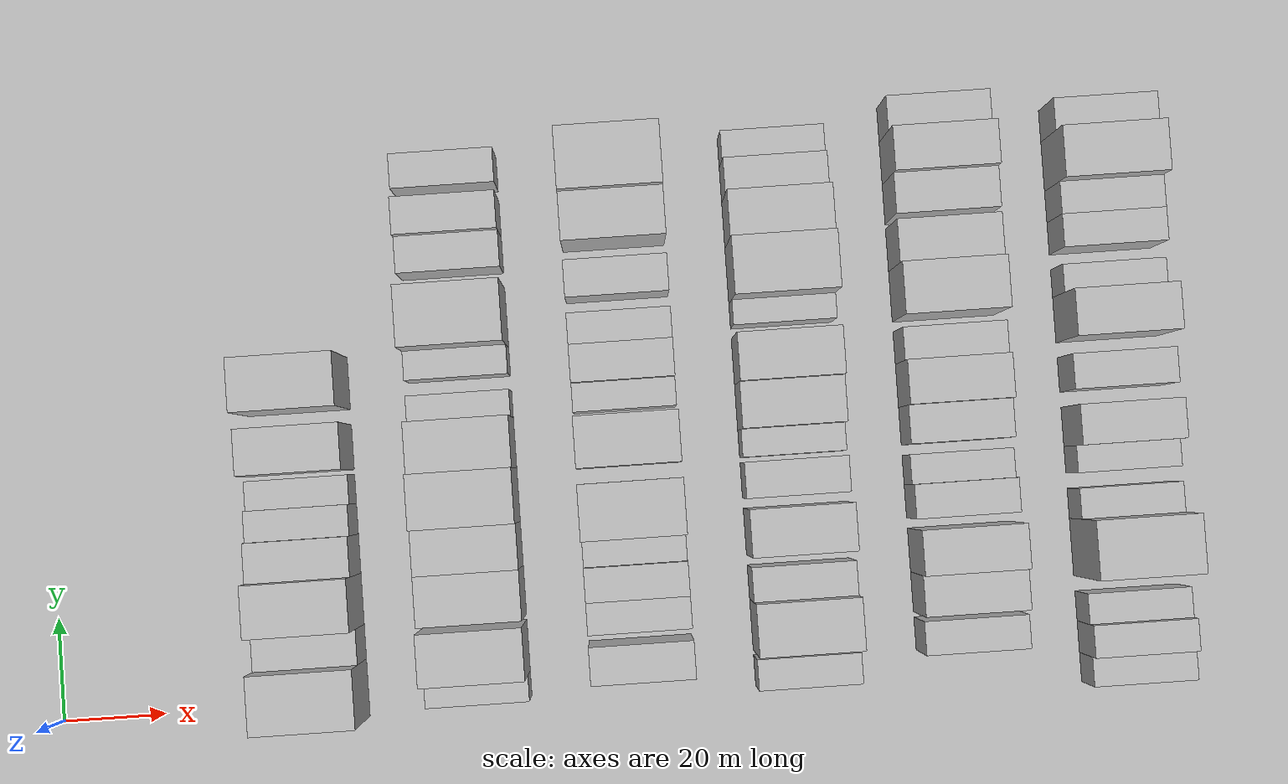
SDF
<sdf version="1.6">
 <world name="default">
  <include><name>ground_plane_1</name><uri>model://HANNAS_ground_plane</uri></include>
  <include>
   <name>ground_plane_2</name>
   <uri>model://HANNAS_ground_plane</uri>
   <pose>100 0 0  0 0 0</pose>
  </include>
  <model name="building_59">
   <static>1</static>
   <pose>50.0000 2.4540 0 0.000000 0.000000 0.000000</pose>
   <link name="link">
    <pose>0 0 12.00 0 0 0</pose>
    <collision name="collision"><geometry><box><size>20.0000 11.2558 24.0000</size></box></geometry></collision>
    <visual name="visual">
     <cast_shadows>0</cast_shadows>
     <geometry><box><size>20.0000 11.2558 24.0000</size></box></geometry>
     <material>
      <script>
       <uri>model://HANNAS_wall/materials/scripts</uri>
       <uri>model://HANNAS_wall/materials/textures</uri>
       <name>vrc/HANNAS_wall</name>
      </script>
     </material>
    </visual>
   </link>
  </model>
  <model name="building_60">
   <static>1</static>
   <pose>50.0000 11.4748 0 0.000000 0.000000 0.000000</pose>
   <link name="link">
    <pose>0 0 7.50 0 0 0</pose>
    <collision name="collision"><geometry><box><size>20.0000 6.7858 15.0000</size></box></geometry></collision>
    <visual name="visual">
     <cast_shadows>0</cast_shadows>
     <geometry><box><size>20.0000 6.7858 15.0000</size></box></geometry>
     <material>
      <script>
       <uri>model://HANNAS_wall/materials/scripts</uri>
       <uri>model://HANNAS_wall/materials/textures</uri>
       <name>vrc/HANNAS_wall</name>
      </script>
     </material>
    </visual>
   </link>
  </model>
  <model name="building_61">
   <static>1</static>
   <pose>50.0000 19.8986 0 0.000000 0.000000 0.000000</pose>
   <link name="link">
    <pose>0 0 12.00 0 0 0</pose>
    <collision name="collision"><geometry><box><size>20.0000 10.0618 24.0000</size></box></geometry></collision>
    <visual name="visual">
     <cast_shadows>0</cast_shadows>
     <geometry><box><size>20.0000 10.0618 24.0000</size></box></geometry>
     <material>
      <script>
       <uri>model://HANNAS_wall/materials/scripts</uri>
       <uri>model://HANNAS_wall/materials/textures</uri>
       <name>vrc/HANNAS_wall</name>
      </script>
     </material>
    </visual>
   </link>
  </model>
  <model name="building_62">
   <static>1</static>
   <pose>50.0000 28.7914 0 0.000000 0.000000 0.000000</pose>
   <link name="link">
    <pose>0 0 9.00 0 0 0</pose>
    <collision name="collision"><geometry><box><size>20.0000 7.7238 18.0000</size></box></geometry></collision>
    <visual name="visual">
     <cast_shadows>0</cast_shadows>
     <geometry><box><size>20.0000 7.7238 18.0000</size></box></geometry>
     <material>
      <script>
       <uri>model://HANNAS_wall/materials/scripts</uri>
       <uri>model://HANNAS_wall/materials/textures</uri>
       <name>vrc/HANNAS_wall</name>
      </script>
     </material>
    </visual>
   </link>
  </model>
  <model name="building_63">
   <static>1</static>
   <pose>50.0000 35.6680 0 0.000000 0.000000 0.000000</pose>
   <link name="link">
    <pose>0 0 7.50 0 0 0</pose>
    <collision name="collision"><geometry><box><size>20.0000 6.0293 15.0000</size></box></geometry></collision>
    <visual name="visual">
     <cast_shadows>0</cast_shadows>
     <geometry><box><size>20.0000 6.0293 15.0000</size></box></geometry>
     <material>
      <script>
       <uri>model://HANNAS_wall/materials/scripts</uri>
       <uri>model://HANNAS_wall/materials/textures</uri>
       <name>vrc/HANNAS_wall</name>
      </script>
     </material>
    </visual>
   </link>
  </model>
  <model name="building_64">
   <static>1</static>
   <pose>50.0000 41.5194 0 0.000000 0.000000 0.000000</pose>
   <link name="link">
    <pose>0 0 6.00 0 0 0</pose>
    <collision name="collision"><geometry><box><size>20.0000 5.6735 12.0000</size></box></geometry></collision>
    <visual name="visual">
     <cast_shadows>0</cast_shadows>
     <geometry><box><size>20.0000 5.6735 12.0000</size></box></geometry>
     <material>
      <script>
       <uri>model://HANNAS_wall/materials/scripts</uri>
       <uri>model://HANNAS_wall/materials/textures</uri>
       <name>vrc/HANNAS_wall</name>
      </script>
     </material>
    </visual>
   </link>
  </model>
  <model name="building_65">
   <static>1</static>
   <pose>50.0000 49.8025 0 0.000000 0.000000 0.000000</pose>
   <link name="link">
    <pose>0 0 10.50 0 0 0</pose>
    <collision name="collision"><geometry><box><size>20.0000 8.8927 21.0000</size></box></geometry></collision>
    <visual name="visual">
     <cast_shadows>0</cast_shadows>
     <geometry><box><size>20.0000 8.8927 21.0000</size></box></geometry>
     <material>
      <script>
       <uri>model://HANNAS_wall/materials/scripts</uri>
       <uri>model://HANNAS_wall/materials/textures</uri>
       <name>vrc/HANNAS_wall</name>
      </script>
     </material>
    </visual>
   </link>
  </model>
  <model name="building_66">
   <static>1</static>
   <pose>50.0000 62.4024 0 0.000000 0.000000 0.000000</pose>
   <link name="link">
    <pose>0 0 12.00 0 0 0</pose>
    <collision name="collision"><geometry><box><size>20.0000 10.3072 24.0000</size></box></geometry></collision>
    <visual name="visual">
     <cast_shadows>0</cast_shadows>
     <geometry><box><size>20.0000 10.3072 24.0000</size></box></geometry>
     <material>
      <script>
       <uri>model://HANNAS_wall/materials/scripts</uri>
       <uri>model://HANNAS_wall/materials/textures</uri>
       <name>vrc/HANNAS_wall</name>
      </script>
     </material>
    </visual>
   </link>
  </model>
  <model name="building_176">
   <static>1</static>
   <pose>82.0000 1.1740 0 0.000000 0.000000 0.000000</pose>
   <link name="link">
    <pose>0 0 6.00 0 0 0</pose>
    <collision name="collision"><geometry><box><size>20.0000 4.9287 12.0000</size></box></geometry></collision>
    <visual name="visual">
     <cast_shadows>0</cast_shadows>
     <geometry><box><size>20.0000 4.9287 12.0000</size></box></geometry>
     <material>
      <script>
       <uri>model://HANNAS_wall/materials/scripts</uri>
       <uri>model://HANNAS_wall/materials/textures</uri>
       <name>vrc/HANNAS_wall</name>
      </script>
     </material>
    </visual>
   </link>
  </model>
  <model name="building_177">
   <static>1</static>
   <pose>82.0000 8.6449 0 0.000000 0.000000 0.000000</pose>
   <link name="link">
    <pose>0 0 12.00 0 0 0</pose>
    <collision name="collision"><geometry><box><size>20.0000 10.0131 24.0000</size></box></geometry></collision>
    <visual name="visual">
     <cast_shadows>0</cast_shadows>
     <geometry><box><size>20.0000 10.0131 24.0000</size></box></geometry>
     <material>
      <script>
       <uri>model://HANNAS_wall/materials/scripts</uri>
       <uri>model://HANNAS_wall/materials/textures</uri>
       <name>vrc/HANNAS_wall</name>
      </script>
     </material>
    </visual>
   </link>
  </model>
  <model name="building_178">
   <static>1</static>
   <pose>82.0000 19.4543 0 0.000000 0.000000 0.000000</pose>
   <link name="link">
    <pose>0 0 10.50 0 0 0</pose>
    <collision name="collision"><geometry><box><size>20.0000 9.6057 21.0000</size></box></geometry></collision>
    <visual name="visual">
     <cast_shadows>0</cast_shadows>
     <geometry><box><size>20.0000 9.6057 21.0000</size></box></geometry>
     <material>
      <script>
       <uri>model://HANNAS_wall/materials/scripts</uri>
       <uri>model://HANNAS_wall/materials/textures</uri>
       <name>vrc/HANNAS_wall</name>
      </script>
     </material>
    </visual>
   </link>
  </model>
  <model name="building_179">
   <static>1</static>
   <pose>82.0000 28.6074 0 0.000000 0.000000 0.000000</pose>
   <link name="link">
    <pose>0 0 10.50 0 0 0</pose>
    <collision name="collision"><geometry><box><size>20.0000 8.7005 21.0000</size></box></geometry></collision>
    <visual name="visual">
     <cast_shadows>0</cast_shadows>
     <geometry><box><size>20.0000 8.7005 21.0000</size></box></geometry>
     <material>
      <script>
       <uri>model://HANNAS_wall/materials/scripts</uri>
       <uri>model://HANNAS_wall/materials/textures</uri>
       <name>vrc/HANNAS_wall</name>
      </script>
     </material>
    </visual>
   </link>
  </model>
  <model name="building_180">
   <static>1</static>
   <pose>82.0000 38.2340 0 0.000000 0.000000 0.000000</pose>
   <link name="link">
    <pose>0 0 12.00 0 0 0</pose>
    <collision name="collision"><geometry><box><size>20.0000 10.5526 24.0000</size></box></geometry></collision>
    <visual name="visual">
     <cast_shadows>0</cast_shadows>
     <geometry><box><size>20.0000 10.5526 24.0000</size></box></geometry>
     <material>
      <script>
       <uri>model://HANNAS_wall/materials/scripts</uri>
       <uri>model://HANNAS_wall/materials/textures</uri>
       <name>vrc/HANNAS_wall</name>
      </script>
     </material>
    </visual>
   </link>
  </model>
  <model name="building_181">
   <static>1</static>
   <pose>82.0000 48.4615 0 0.000000 0.000000 0.000000</pose>
   <link name="link">
    <pose>0 0 10.50 0 0 0</pose>
    <collision name="collision"><geometry><box><size>20.0000 9.9025 21.0000</size></box></geometry></collision>
    <visual name="visual">
     <cast_shadows>0</cast_shadows>
     <geometry><box><size>20.0000 9.9025 21.0000</size></box></geometry>
     <material>
      <script>
       <uri>model://HANNAS_wall/materials/scripts</uri>
       <uri>model://HANNAS_wall/materials/textures</uri>
       <name>vrc/HANNAS_wall</name>
      </script>
     </material>
    </visual>
   </link>
  </model>
  <model name="building_182">
   <static>1</static>
   <pose>82.0000 56.0229 0 0.000000 0.000000 0.000000</pose>
   <link name="link">
    <pose>0 0 6.00 0 0 0</pose>
    <collision name="collision"><geometry><box><size>20.0000 5.2202 12.0000</size></box></geometry></collision>
    <visual name="visual">
     <cast_shadows>0</cast_shadows>
     <geometry><box><size>20.0000 5.2202 12.0000</size></box></geometry>
     <material>
      <script>
       <uri>model://HANNAS_wall/materials/scripts</uri>
       <uri>model://HANNAS_wall/materials/textures</uri>
       <name>vrc/HANNAS_wall</name>
      </script>
     </material>
    </visual>
   </link>
  </model>
  <model name="building_183">
   <static>1</static>
   <pose>82.0000 64.4523 0 0.000000 0.000000 0.000000</pose>
   <link name="link">
    <pose>0 0 6.00 0 0 0</pose>
    <collision name="collision"><geometry><box><size>20.0000 5.6386 12.0000</size></box></geometry></collision>
    <visual name="visual">
     <cast_shadows>0</cast_shadows>
     <geometry><box><size>20.0000 5.6386 12.0000</size></box></geometry>
     <material>
      <script>
       <uri>model://HANNAS_wall/materials/scripts</uri>
       <uri>model://HANNAS_wall/materials/textures</uri>
       <name>vrc/HANNAS_wall</name>
      </script>
     </material>
    </visual>
   </link>
  </model>
  <model name="building_184">
   <static>1</static>
   <pose>82.0000 73.1516 0 0.000000 0.000000 0.000000</pose>
   <link name="link">
    <pose>0 0 12.00 0 0 0</pose>
    <collision name="collision"><geometry><box><size>20.0000 11.7602 24.0000</size></box></geometry></collision>
    <visual name="visual">
     <cast_shadows>0</cast_shadows>
     <geometry><box><size>20.0000 11.7602 24.0000</size></box></geometry>
     <material>
      <script>
       <uri>model://HANNAS_wall/materials/scripts</uri>
       <uri>model://HANNAS_wall/materials/textures</uri>
       <name>vrc/HANNAS_wall</name>
      </script>
     </material>
    </visual>
   </link>
  </model>
  <model name="building_185">
   <static>1</static>
   <pose>82.0000 85.5700 0 0.000000 0.000000 0.000000</pose>
   <link name="link">
    <pose>0 0 7.50 0 0 0</pose>
    <collision name="collision"><geometry><box><size>20.0000 7.0766 15.0000</size></box></geometry></collision>
    <visual name="visual">
     <cast_shadows>0</cast_shadows>
     <geometry><box><size>20.0000 7.0766 15.0000</size></box></geometry>
     <material>
      <script>
       <uri>model://HANNAS_wall/materials/scripts</uri>
       <uri>model://HANNAS_wall/materials/textures</uri>
       <name>vrc/HANNAS_wall</name>
      </script>
     </material>
    </visual>
   </link>
  </model>
  <model name="building_186">
   <static>1</static>
   <pose>82.0000 92.7219 0 0.000000 0.000000 0.000000</pose>
   <link name="link">
    <pose>0 0 9.00 0 0 0</pose>
    <collision name="collision"><geometry><box><size>20.0000 7.2272 18.0000</size></box></geometry></collision>
    <visual name="visual">
     <cast_shadows>0</cast_shadows>
     <geometry><box><size>20.0000 7.2272 18.0000</size></box></geometry>
     <material>
      <script>
       <uri>model://HANNAS_wall/materials/scripts</uri>
       <uri>model://HANNAS_wall/materials/textures</uri>
       <name>vrc/HANNAS_wall</name>
      </script>
     </material>
    </visual>
   </link>
  </model>
  <model name="building_187">
   <static>1</static>
   <pose>82.0000 101.6809 0 0.000000 0.000000 0.000000</pose>
   <link name="link">
    <pose>0 0 7.50 0 0 0</pose>
    <collision name="collision"><geometry><box><size>20.0000 6.6908 15.0000</size></box></geometry></collision>
    <visual name="visual">
     <cast_shadows>0</cast_shadows>
     <geometry><box><size>20.0000 6.6908 15.0000</size></box></geometry>
     <material>
      <script>
       <uri>model://HANNAS_wall/materials/scripts</uri>
       <uri>model://HANNAS_wall/materials/textures</uri>
       <name>vrc/HANNAS_wall</name>
      </script>
     </material>
    </visual>
   </link>
  </model>
  <model name="building_298">
   <static>1</static>
   <pose>114.0000 4.9829 0 0.000000 0.000000 0.000000</pose>
   <link name="link">
    <pose>0 0 9.00 0 0 0</pose>
    <collision name="collision"><geometry><box><size>20.0000 7.3119 18.0000</size></box></geometry></collision>
    <visual name="visual">
     <cast_shadows>0</cast_shadows>
     <geometry><box><size>20.0000 7.3119 18.0000</size></box></geometry>
     <material>
      <script>
       <uri>model://HANNAS_wall/materials/scripts</uri>
       <uri>model://HANNAS_wall/materials/textures</uri>
       <name>vrc/HANNAS_wall</name>
      </script>
     </material>
    </visual>
   </link>
  </model>
  <model name="building_299">
   <static>1</static>
   <pose>114.0000 13.7177 0 0.000000 0.000000 0.000000</pose>
   <link name="link">
    <pose>0 0 7.50 0 0 0</pose>
    <collision name="collision"><geometry><box><size>20.0000 6.1577 15.0000</size></box></geometry></collision>
    <visual name="visual">
     <cast_shadows>0</cast_shadows>
     <geometry><box><size>20.0000 6.1577 15.0000</size></box></geometry>
     <material>
      <script>
       <uri>model://HANNAS_wall/materials/scripts</uri>
       <uri>model://HANNAS_wall/materials/textures</uri>
       <name>vrc/HANNAS_wall</name>
      </script>
     </material>
    </visual>
   </link>
  </model>
  <model name="building_300">
   <static>1</static>
   <pose>114.0000 20.1188 0 0.000000 0.000000 0.000000</pose>
   <link name="link">
    <pose>0 0 7.50 0 0 0</pose>
    <collision name="collision"><geometry><box><size>20.0000 6.6445 15.0000</size></box></geometry></collision>
    <visual name="visual">
     <cast_shadows>0</cast_shadows>
     <geometry><box><size>20.0000 6.6445 15.0000</size></box></geometry>
     <material>
      <script>
       <uri>model://HANNAS_wall/materials/scripts</uri>
       <uri>model://HANNAS_wall/materials/textures</uri>
       <name>vrc/HANNAS_wall</name>
      </script>
     </material>
    </visual>
   </link>
  </model>
  <model name="building_301">
   <static>1</static>
   <pose>114.0000 26.0762 0 0.000000 0.000000 0.000000</pose>
   <link name="link">
    <pose>0 0 6.00 0 0 0</pose>
    <collision name="collision"><geometry><box><size>20.0000 5.2703 12.0000</size></box></geometry></collision>
    <visual name="visual">
     <cast_shadows>0</cast_shadows>
     <geometry><box><size>20.0000 5.2703 12.0000</size></box></geometry>
     <material>
      <script>
       <uri>model://HANNAS_wall/materials/scripts</uri>
       <uri>model://HANNAS_wall/materials/textures</uri>
       <name>vrc/HANNAS_wall</name>
      </script>
     </material>
    </visual>
   </link>
  </model>
  <model name="building_302">
   <static>1</static>
   <pose>114.0000 34.0708 0 0.000000 0.000000 0.000000</pose>
   <link name="link">
    <pose>0 0 12.00 0 0 0</pose>
    <collision name="collision"><geometry><box><size>20.0000 10.7191 24.0000</size></box></geometry></collision>
    <visual name="visual">
     <cast_shadows>0</cast_shadows>
     <geometry><box><size>20.0000 10.7191 24.0000</size></box></geometry>
     <material>
      <script>
       <uri>model://HANNAS_wall/materials/scripts</uri>
       <uri>model://HANNAS_wall/materials/textures</uri>
       <name>vrc/HANNAS_wall</name>
      </script>
     </material>
    </visual>
   </link>
  </model>
  <model name="building_303">
   <static>1</static>
   <pose>114.0000 47.3775 0 0.000000 0.000000 0.000000</pose>
   <link name="link">
    <pose>0 0 10.50 0 0 0</pose>
    <collision name="collision"><geometry><box><size>20.0000 9.8943 21.0000</size></box></geometry></collision>
    <visual name="visual">
     <cast_shadows>0</cast_shadows>
     <geometry><box><size>20.0000 9.8943 21.0000</size></box></geometry>
     <material>
      <script>
       <uri>model://HANNAS_wall/materials/scripts</uri>
       <uri>model://HANNAS_wall/materials/textures</uri>
       <name>vrc/HANNAS_wall</name>
      </script>
     </material>
    </visual>
   </link>
  </model>
  <model name="building_304">
   <static>1</static>
   <pose>114.0000 56.1058 0 0.000000 0.000000 0.000000</pose>
   <link name="link">
    <pose>0 0 6.00 0 0 0</pose>
    <collision name="collision"><geometry><box><size>20.0000 5.5623 12.0000</size></box></geometry></collision>
    <visual name="visual">
     <cast_shadows>0</cast_shadows>
     <geometry><box><size>20.0000 5.5623 12.0000</size></box></geometry>
     <material>
      <script>
       <uri>model://HANNAS_wall/materials/scripts</uri>
       <uri>model://HANNAS_wall/materials/textures</uri>
       <name>vrc/HANNAS_wall</name>
      </script>
     </material>
    </visual>
   </link>
  </model>
  <model name="building_305">
   <static>1</static>
   <pose>114.0000 62.5528 0 0.000000 0.000000 0.000000</pose>
   <link name="link">
    <pose>0 0 7.50 0 0 0</pose>
    <collision name="collision"><geometry><box><size>20.0000 7.3317 15.0000</size></box></geometry></collision>
    <visual name="visual">
     <cast_shadows>0</cast_shadows>
     <geometry><box><size>20.0000 7.3317 15.0000</size></box></geometry>
     <material>
      <script>
       <uri>model://HANNAS_wall/materials/scripts</uri>
       <uri>model://HANNAS_wall/materials/textures</uri>
       <name>vrc/HANNAS_wall</name>
      </script>
     </material>
    </visual>
   </link>
  </model>
  <model name="building_306">
   <static>1</static>
   <pose>114.0000 69.2244 0 0.000000 0.000000 0.000000</pose>
   <link name="link">
    <pose>0 0 7.50 0 0 0</pose>
    <collision name="collision"><geometry><box><size>20.0000 6.0115 15.0000</size></box></geometry></collision>
    <visual name="visual">
     <cast_shadows>0</cast_shadows>
     <geometry><box><size>20.0000 6.0115 15.0000</size></box></geometry>
     <material>
      <script>
       <uri>model://HANNAS_wall/materials/scripts</uri>
       <uri>model://HANNAS_wall/materials/textures</uri>
       <name>vrc/HANNAS_wall</name>
      </script>
     </material>
    </visual>
   </link>
  </model>
  <model name="building_307">
   <static>1</static>
   <pose>114.0000 78.8335 0 0.000000 0.000000 0.000000</pose>
   <link name="link">
    <pose>0 0 7.50 0 0 0</pose>
    <collision name="collision"><geometry><box><size>20.0000 7.2066 15.0000</size></box></geometry></collision>
    <visual name="visual">
     <cast_shadows>0</cast_shadows>
     <geometry><box><size>20.0000 7.2066 15.0000</size></box></geometry>
     <material>
      <script>
       <uri>model://HANNAS_wall/materials/scripts</uri>
       <uri>model://HANNAS_wall/materials/textures</uri>
       <name>vrc/HANNAS_wall</name>
      </script>
     </material>
    </visual>
   </link>
  </model>
  <model name="building_308">
   <static>1</static>
   <pose>114.0000 90.1056 0 0.000000 0.000000 0.000000</pose>
   <link name="link">
    <pose>0 0 10.50 0 0 0</pose>
    <collision name="collision"><geometry><box><size>20.0000 9.3375 21.0000</size></box></geometry></collision>
    <visual name="visual">
     <cast_shadows>0</cast_shadows>
     <geometry><box><size>20.0000 9.3375 21.0000</size></box></geometry>
     <material>
      <script>
       <uri>model://HANNAS_wall/materials/scripts</uri>
       <uri>model://HANNAS_wall/materials/textures</uri>
       <name>vrc/HANNAS_wall</name>
      </script>
     </material>
    </visual>
   </link>
  </model>
  <model name="building_309">
   <static>1</static>
   <pose>114.0000 100.7674 0 0.000000 0.000000 0.000000</pose>
   <link name="link">
    <pose>0 0 12.00 0 0 0</pose>
    <collision name="collision"><geometry><box><size>20.0000 11.9862 24.0000</size></box></geometry></collision>
    <visual name="visual">
     <cast_shadows>0</cast_shadows>
     <geometry><box><size>20.0000 11.9862 24.0000</size></box></geometry>
     <material>
      <script>
       <uri>model://HANNAS_wall/materials/scripts</uri>
       <uri>model://HANNAS_wall/materials/textures</uri>
       <name>vrc/HANNAS_wall</name>
      </script>
     </material>
    </visual>
   </link>
  </model>
  <model name="building_420">
   <static>1</static>
   <pose>146.0000 0.6500 0 0.000000 0.000000 0.000000</pose>
   <link name="link">
    <pose>0 0 6.00 0 0 0</pose>
    <collision name="collision"><geometry><box><size>20.0000 5.9828 12.0000</size></box></geometry></collision>
    <visual name="visual">
     <cast_shadows>0</cast_shadows>
     <geometry><box><size>20.0000 5.9828 12.0000</size></box></geometry>
     <material>
      <script>
       <uri>model://HANNAS_wall/materials/scripts</uri>
       <uri>model://HANNAS_wall/materials/textures</uri>
       <name>vrc/HANNAS_wall</name>
      </script>
     </material>
    </visual>
   </link>
  </model>
  <model name="building_421">
   <static>1</static>
   <pose>146.0000 9.6861 0 0.000000 0.000000 0.000000</pose>
   <link name="link">
    <pose>0 0 10.50 0 0 0</pose>
    <collision name="collision"><geometry><box><size>20.0000 10.0894 21.0000</size></box></geometry></collision>
    <visual name="visual">
     <cast_shadows>0</cast_shadows>
     <geometry><box><size>20.0000 10.0894 21.0000</size></box></geometry>
     <material>
      <script>
       <uri>model://HANNAS_wall/materials/scripts</uri>
       <uri>model://HANNAS_wall/materials/textures</uri>
       <name>vrc/HANNAS_wall</name>
      </script>
     </material>
    </visual>
   </link>
  </model>
  <model name="building_422">
   <static>1</static>
   <pose>146.0000 18.0641 0 0.000000 0.000000 0.000000</pose>
   <link name="link">
    <pose>0 0 7.50 0 0 0</pose>
    <collision name="collision"><geometry><box><size>20.0000 6.6665 15.0000</size></box></geometry></collision>
    <visual name="visual">
     <cast_shadows>0</cast_shadows>
     <geometry><box><size>20.0000 6.6665 15.0000</size></box></geometry>
     <material>
      <script>
       <uri>model://HANNAS_wall/materials/scripts</uri>
       <uri>model://HANNAS_wall/materials/textures</uri>
       <name>vrc/HANNAS_wall</name>
      </script>
     </material>
    </visual>
   </link>
  </model>
  <model name="building_423">
   <static>1</static>
   <pose>146.0000 27.9633 0 0.000000 0.000000 0.000000</pose>
   <link name="link">
    <pose>0 0 10.50 0 0 0</pose>
    <collision name="collision"><geometry><box><size>20.0000 9.1318 21.0000</size></box></geometry></collision>
    <visual name="visual">
     <cast_shadows>0</cast_shadows>
     <geometry><box><size>20.0000 9.1318 21.0000</size></box></geometry>
     <material>
      <script>
       <uri>model://HANNAS_wall/materials/scripts</uri>
       <uri>model://HANNAS_wall/materials/textures</uri>
       <name>vrc/HANNAS_wall</name>
      </script>
     </material>
    </visual>
   </link>
  </model>
  <model name="building_424">
   <static>1</static>
   <pose>146.0000 37.9951 0 0.000000 0.000000 0.000000</pose>
   <link name="link">
    <pose>0 0 7.50 0 0 0</pose>
    <collision name="collision"><geometry><box><size>20.0000 6.9320 15.0000</size></box></geometry></collision>
    <visual name="visual">
     <cast_shadows>0</cast_shadows>
     <geometry><box><size>20.0000 6.9320 15.0000</size></box></geometry>
     <material>
      <script>
       <uri>model://HANNAS_wall/materials/scripts</uri>
       <uri>model://HANNAS_wall/materials/textures</uri>
       <name>vrc/HANNAS_wall</name>
      </script>
     </material>
    </visual>
   </link>
  </model>
  <model name="building_425">
   <static>1</static>
   <pose>146.0000 45.1613 0 0.000000 0.000000 0.000000</pose>
   <link name="link">
    <pose>0 0 6.00 0 0 0</pose>
    <collision name="collision"><geometry><box><size>20.0000 5.4005 12.0000</size></box></geometry></collision>
    <visual name="visual">
     <cast_shadows>0</cast_shadows>
     <geometry><box><size>20.0000 5.4005 12.0000</size></box></geometry>
     <material>
      <script>
       <uri>model://HANNAS_wall/materials/scripts</uri>
       <uri>model://HANNAS_wall/materials/textures</uri>
       <name>vrc/HANNAS_wall</name>
      </script>
     </material>
    </visual>
   </link>
  </model>
  <model name="building_426">
   <static>1</static>
   <pose>146.0000 52.3159 0 0.000000 0.000000 0.000000</pose>
   <link name="link">
    <pose>0 0 9.00 0 0 0</pose>
    <collision name="collision"><geometry><box><size>20.0000 8.9085 18.0000</size></box></geometry></collision>
    <visual name="visual">
     <cast_shadows>0</cast_shadows>
     <geometry><box><size>20.0000 8.9085 18.0000</size></box></geometry>
     <material>
      <script>
       <uri>model://HANNAS_wall/materials/scripts</uri>
       <uri>model://HANNAS_wall/materials/textures</uri>
       <name>vrc/HANNAS_wall</name>
      </script>
     </material>
    </visual>
   </link>
  </model>
  <model name="building_427">
   <static>1</static>
   <pose>146.0000 61.3727 0 0.000000 0.000000 0.000000</pose>
   <link name="link">
    <pose>0 0 10.50 0 0 0</pose>
    <collision name="collision"><geometry><box><size>20.0000 9.2052 21.0000</size></box></geometry></collision>
    <visual name="visual">
     <cast_shadows>0</cast_shadows>
     <geometry><box><size>20.0000 9.2052 21.0000</size></box></geometry>
     <material>
      <script>
       <uri>model://HANNAS_wall/materials/scripts</uri>
       <uri>model://HANNAS_wall/materials/textures</uri>
       <name>vrc/HANNAS_wall</name>
      </script>
     </material>
    </visual>
   </link>
  </model>
  <model name="building_428">
   <static>1</static>
   <pose>146.0000 70.4055 0 0.000000 0.000000 0.000000</pose>
   <link name="link">
    <pose>0 0 6.00 0 0 0</pose>
    <collision name="collision"><geometry><box><size>20.0000 4.8604 12.0000</size></box></geometry></collision>
    <visual name="visual">
     <cast_shadows>0</cast_shadows>
     <geometry><box><size>20.0000 4.8604 12.0000</size></box></geometry>
     <material>
      <script>
       <uri>model://HANNAS_wall/materials/scripts</uri>
       <uri>model://HANNAS_wall/materials/textures</uri>
       <name>vrc/HANNAS_wall</name>
      </script>
     </material>
    </visual>
   </link>
  </model>
  <model name="building_429">
   <static>1</static>
   <pose>146.0000 78.3589 0 0.000000 0.000000 0.000000</pose>
   <link name="link">
    <pose>0 0 12.00 0 0 0</pose>
    <collision name="collision"><geometry><box><size>20.0000 11.0465 24.0000</size></box></geometry></collision>
    <visual name="visual">
     <cast_shadows>0</cast_shadows>
     <geometry><box><size>20.0000 11.0465 24.0000</size></box></geometry>
     <material>
      <script>
       <uri>model://HANNAS_wall/materials/scripts</uri>
       <uri>model://HANNAS_wall/materials/textures</uri>
       <name>vrc/HANNAS_wall</name>
      </script>
     </material>
    </visual>
   </link>
  </model>
  <model name="building_430">
   <static>1</static>
   <pose>146.0000 88.4195 0 0.000000 0.000000 0.000000</pose>
   <link name="link">
    <pose>0 0 10.50 0 0 0</pose>
    <collision name="collision"><geometry><box><size>20.0000 9.0747 21.0000</size></box></geometry></collision>
    <visual name="visual">
     <cast_shadows>0</cast_shadows>
     <geometry><box><size>20.0000 9.0747 21.0000</size></box></geometry>
     <material>
      <script>
       <uri>model://HANNAS_wall/materials/scripts</uri>
       <uri>model://HANNAS_wall/materials/textures</uri>
       <name>vrc/HANNAS_wall</name>
      </script>
     </material>
    </visual>
   </link>
  </model>
  <model name="building_431">
   <static>1</static>
   <pose>146.0000 96.4412 0 0.000000 0.000000 0.000000</pose>
   <link name="link">
    <pose>0 0 7.50 0 0 0</pose>
    <collision name="collision"><geometry><box><size>20.0000 6.9687 15.0000</size></box></geometry></collision>
    <visual name="visual">
     <cast_shadows>0</cast_shadows>
     <geometry><box><size>20.0000 6.9687 15.0000</size></box></geometry>
     <material>
      <script>
       <uri>model://HANNAS_wall/materials/scripts</uri>
       <uri>model://HANNAS_wall/materials/textures</uri>
       <name>vrc/HANNAS_wall</name>
      </script>
     </material>
    </visual>
   </link>
  </model>
  <model name="building_432">
   <static>1</static>
   <pose>146.0000 102.7626 0 0.000000 0.000000 0.000000</pose>
   <link name="link">
    <pose>0 0 6.00 0 0 0</pose>
    <collision name="collision"><geometry><box><size>20.0000 5.6740 12.0000</size></box></geometry></collision>
    <visual name="visual">
     <cast_shadows>0</cast_shadows>
     <geometry><box><size>20.0000 5.6740 12.0000</size></box></geometry>
     <material>
      <script>
       <uri>model://HANNAS_wall/materials/scripts</uri>
       <uri>model://HANNAS_wall/materials/textures</uri>
       <name>vrc/HANNAS_wall</name>
      </script>
     </material>
    </visual>
   </link>
  </model>
  <model name="building_545">
   <static>1</static>
   <pose>178.0000 5.6952 0 0.000000 0.000000 0.000000</pose>
   <link name="link">
    <pose>0 0 7.50 0 0 0</pose>
    <collision name="collision"><geometry><box><size>20.0000 6.4897 15.0000</size></box></geometry></collision>
    <visual name="visual">
     <cast_shadows>0</cast_shadows>
     <geometry><box><size>20.0000 6.4897 15.0000</size></box></geometry>
     <material>
      <script>
       <uri>model://HANNAS_wall/materials/scripts</uri>
       <uri>model://HANNAS_wall/materials/textures</uri>
       <name>vrc/HANNAS_wall</name>
      </script>
     </material>
    </visual>
   </link>
  </model>
  <model name="building_546">
   <static>1</static>
   <pose>178.0000 13.8675 0 0.000000 0.000000 0.000000</pose>
   <link name="link">
    <pose>0 0 9.00 0 0 0</pose>
    <collision name="collision"><geometry><box><size>20.0000 7.8550 18.0000</size></box></geometry></collision>
    <visual name="visual">
     <cast_shadows>0</cast_shadows>
     <geometry><box><size>20.0000 7.8550 18.0000</size></box></geometry>
     <material>
      <script>
       <uri>model://HANNAS_wall/materials/scripts</uri>
       <uri>model://HANNAS_wall/materials/textures</uri>
       <name>vrc/HANNAS_wall</name>
      </script>
     </material>
    </visual>
   </link>
  </model>
  <model name="building_547">
   <static>1</static>
   <pose>178.0000 22.1118 0 0.000000 0.000000 0.000000</pose>
   <link name="link">
    <pose>0 0 10.50 0 0 0</pose>
    <collision name="collision"><geometry><box><size>20.0000 8.6336 21.0000</size></box></geometry></collision>
    <visual name="visual">
     <cast_shadows>0</cast_shadows>
     <geometry><box><size>20.0000 8.6336 21.0000</size></box></geometry>
     <material>
      <script>
       <uri>model://HANNAS_wall/materials/scripts</uri>
       <uri>model://HANNAS_wall/materials/textures</uri>
       <name>vrc/HANNAS_wall</name>
      </script>
     </material>
    </visual>
   </link>
  </model>
  <model name="building_548">
   <static>1</static>
   <pose>178.0000 31.7306 0 0.000000 0.000000 0.000000</pose>
   <link name="link">
    <pose>0 0 7.50 0 0 0</pose>
    <collision name="collision"><geometry><box><size>20.0000 6.6038 15.0000</size></box></geometry></collision>
    <visual name="visual">
     <cast_shadows>0</cast_shadows>
     <geometry><box><size>20.0000 6.6038 15.0000</size></box></geometry>
     <material>
      <script>
       <uri>model://HANNAS_wall/materials/scripts</uri>
       <uri>model://HANNAS_wall/materials/textures</uri>
       <name>vrc/HANNAS_wall</name>
      </script>
     </material>
    </visual>
   </link>
  </model>
  <model name="building_549">
   <static>1</static>
   <pose>178.0000 37.9041 0 0.000000 0.000000 0.000000</pose>
   <link name="link">
    <pose>0 0 6.00 0 0 0</pose>
    <collision name="collision"><geometry><box><size>20.0000 5.7432 12.0000</size></box></geometry></collision>
    <visual name="visual">
     <cast_shadows>0</cast_shadows>
     <geometry><box><size>20.0000 5.7432 12.0000</size></box></geometry>
     <material>
      <script>
       <uri>model://HANNAS_wall/materials/scripts</uri>
       <uri>model://HANNAS_wall/materials/textures</uri>
       <name>vrc/HANNAS_wall</name>
      </script>
     </material>
    </visual>
   </link>
  </model>
  <model name="building_550">
   <static>1</static>
   <pose>178.0000 46.5047 0 0.000000 0.000000 0.000000</pose>
   <link name="link">
    <pose>0 0 7.50 0 0 0</pose>
    <collision name="collision"><geometry><box><size>20.0000 7.4580 15.0000</size></box></geometry></collision>
    <visual name="visual">
     <cast_shadows>0</cast_shadows>
     <geometry><box><size>20.0000 7.4580 15.0000</size></box></geometry>
     <material>
      <script>
       <uri>model://HANNAS_wall/materials/scripts</uri>
       <uri>model://HANNAS_wall/materials/textures</uri>
       <name>vrc/HANNAS_wall</name>
      </script>
     </material>
    </visual>
   </link>
  </model>
  <model name="building_551">
   <static>1</static>
   <pose>178.0000 54.4984 0 0.000000 0.000000 0.000000</pose>
   <link name="link">
    <pose>0 0 9.00 0 0 0</pose>
    <collision name="collision"><geometry><box><size>20.0000 8.5295 18.0000</size></box></geometry></collision>
    <visual name="visual">
     <cast_shadows>0</cast_shadows>
     <geometry><box><size>20.0000 8.5295 18.0000</size></box></geometry>
     <material>
      <script>
       <uri>model://HANNAS_wall/materials/scripts</uri>
       <uri>model://HANNAS_wall/materials/textures</uri>
       <name>vrc/HANNAS_wall</name>
      </script>
     </material>
    </visual>
   </link>
  </model>
  <model name="building_552">
   <static>1</static>
   <pose>178.0000 61.9580 0 0.000000 0.000000 0.000000</pose>
   <link name="link">
    <pose>0 0 7.50 0 0 0</pose>
    <collision name="collision"><geometry><box><size>20.0000 6.3895 15.0000</size></box></geometry></collision>
    <visual name="visual">
     <cast_shadows>0</cast_shadows>
     <geometry><box><size>20.0000 6.3895 15.0000</size></box></geometry>
     <material>
      <script>
       <uri>model://HANNAS_wall/materials/scripts</uri>
       <uri>model://HANNAS_wall/materials/textures</uri>
       <name>vrc/HANNAS_wall</name>
      </script>
     </material>
    </visual>
   </link>
  </model>
  <model name="building_553">
   <static>1</static>
   <pose>178.0000 72.1577 0 0.000000 0.000000 0.000000</pose>
   <link name="link">
    <pose>0 0 10.50 0 0 0</pose>
    <collision name="collision"><geometry><box><size>20.0000 10.0101 21.0000</size></box></geometry></collision>
    <visual name="visual">
     <cast_shadows>0</cast_shadows>
     <geometry><box><size>20.0000 10.0101 21.0000</size></box></geometry>
     <material>
      <script>
       <uri>model://HANNAS_wall/materials/scripts</uri>
       <uri>model://HANNAS_wall/materials/textures</uri>
       <name>vrc/HANNAS_wall</name>
      </script>
     </material>
    </visual>
   </link>
  </model>
  <model name="building_554">
   <static>1</static>
   <pose>178.0000 81.3567 0 0.000000 0.000000 0.000000</pose>
   <link name="link">
    <pose>0 0 9.00 0 0 0</pose>
    <collision name="collision"><geometry><box><size>20.0000 8.3878 18.0000</size></box></geometry></collision>
    <visual name="visual">
     <cast_shadows>0</cast_shadows>
     <geometry><box><size>20.0000 8.3878 18.0000</size></box></geometry>
     <material>
      <script>
       <uri>model://HANNAS_wall/materials/scripts</uri>
       <uri>model://HANNAS_wall/materials/textures</uri>
       <name>vrc/HANNAS_wall</name>
      </script>
     </material>
    </visual>
   </link>
  </model>
  <model name="building_555">
   <static>1</static>
   <pose>178.0000 90.4621 0 0.000000 0.000000 0.000000</pose>
   <link name="link">
    <pose>0 0 9.00 0 0 0</pose>
    <collision name="collision"><geometry><box><size>20.0000 7.8231 18.0000</size></box></geometry></collision>
    <visual name="visual">
     <cast_shadows>0</cast_shadows>
     <geometry><box><size>20.0000 7.8231 18.0000</size></box></geometry>
     <material>
      <script>
       <uri>model://HANNAS_wall/materials/scripts</uri>
       <uri>model://HANNAS_wall/materials/textures</uri>
       <name>vrc/HANNAS_wall</name>
      </script>
     </material>
    </visual>
   </link>
  </model>
  <model name="building_556">
   <static>1</static>
   <pose>178.0000 98.6175 0 0.000000 0.000000 0.000000</pose>
   <link name="link">
    <pose>0 0 10.50 0 0 0</pose>
    <collision name="collision"><geometry><box><size>20.0000 8.4878 21.0000</size></box></geometry></collision>
    <visual name="visual">
     <cast_shadows>0</cast_shadows>
     <geometry><box><size>20.0000 8.4878 21.0000</size></box></geometry>
     <material>
      <script>
       <uri>model://HANNAS_wall/materials/scripts</uri>
       <uri>model://HANNAS_wall/materials/textures</uri>
       <name>vrc/HANNAS_wall</name>
      </script>
     </material>
    </visual>
   </link>
  </model>
  <model name="building_557">
   <static>1</static>
   <pose>178.0000 106.2578 0 0.000000 0.000000 0.000000</pose>
   <link name="link">
    <pose>0 0 7.50 0 0 0</pose>
    <collision name="collision"><geometry><box><size>20.0000 6.7928 15.0000</size></box></geometry></collision>
    <visual name="visual">
     <cast_shadows>0</cast_shadows>
     <geometry><box><size>20.0000 6.7928 15.0000</size></box></geometry>
     <material>
      <script>
       <uri>model://HANNAS_wall/materials/scripts</uri>
       <uri>model://HANNAS_wall/materials/textures</uri>
       <name>vrc/HANNAS_wall</name>
      </script>
     </material>
    </visual>
   </link>
  </model>
  <model name="building_664">
   <static>1</static>
   <pose>210.0000 -3.1050 0 0.000000 0.000000 0.000000</pose>
   <link name="link">
    <pose>0 0 6.00 0 0 0</pose>
    <collision name="collision"><geometry><box><size>20.0000 5.7140 12.0000</size></box></geometry></collision>
    <visual name="visual">
     <cast_shadows>0</cast_shadows>
     <geometry><box><size>20.0000 5.7140 12.0000</size></box></geometry>
     <material>
      <script>
       <uri>model://HANNAS_wall/materials/scripts</uri>
       <uri>model://HANNAS_wall/materials/textures</uri>
       <name>vrc/HANNAS_wall</name>
      </script>
     </material>
    </visual>
   </link>
  </model>
  <model name="building_665">
   <static>1</static>
   <pose>210.0000 2.8622 0 0.000000 0.000000 0.000000</pose>
   <link name="link">
    <pose>0 0 7.50 0 0 0</pose>
    <collision name="collision"><geometry><box><size>20.0000 6.2204 15.0000</size></box></geometry></collision>
    <visual name="visual">
     <cast_shadows>0</cast_shadows>
     <geometry><box><size>20.0000 6.2204 15.0000</size></box></geometry>
     <material>
      <script>
       <uri>model://HANNAS_wall/materials/scripts</uri>
       <uri>model://HANNAS_wall/materials/textures</uri>
       <name>vrc/HANNAS_wall</name>
      </script>
     </material>
    </visual>
   </link>
  </model>
  <model name="building_666">
   <static>1</static>
   <pose>210.0000 8.9156 0 0.000000 0.000000 0.000000</pose>
   <link name="link">
    <pose>0 0 6.00 0 0 0</pose>
    <collision name="collision"><geometry><box><size>20.0000 5.8864 12.0000</size></box></geometry></collision>
    <visual name="visual">
     <cast_shadows>0</cast_shadows>
     <geometry><box><size>20.0000 5.8864 12.0000</size></box></geometry>
     <material>
      <script>
       <uri>model://HANNAS_wall/materials/scripts</uri>
       <uri>model://HANNAS_wall/materials/textures</uri>
       <name>vrc/HANNAS_wall</name>
      </script>
     </material>
    </visual>
   </link>
  </model>
  <model name="building_667">
   <static>1</static>
   <pose>210.0000 20.5100 0 0.000000 0.000000 0.000000</pose>
   <link name="link">
    <pose>0 0 12.00 0 0 0</pose>
    <collision name="collision"><geometry><box><size>20.0000 11.3023 24.0000</size></box></geometry></collision>
    <visual name="visual">
     <cast_shadows>0</cast_shadows>
     <geometry><box><size>20.0000 11.3023 24.0000</size></box></geometry>
     <material>
      <script>
       <uri>model://HANNAS_wall/materials/scripts</uri>
       <uri>model://HANNAS_wall/materials/textures</uri>
       <name>vrc/HANNAS_wall</name>
      </script>
     </material>
    </visual>
   </link>
  </model>
  <model name="building_668">
   <static>1</static>
   <pose>210.0000 29.1189 0 0.000000 0.000000 0.000000</pose>
   <link name="link">
    <pose>0 0 6.00 0 0 0</pose>
    <collision name="collision"><geometry><box><size>20.0000 5.9157 12.0000</size></box></geometry></collision>
    <visual name="visual">
     <cast_shadows>0</cast_shadows>
     <geometry><box><size>20.0000 5.9157 12.0000</size></box></geometry>
     <material>
      <script>
       <uri>model://HANNAS_wall/materials/scripts</uri>
       <uri>model://HANNAS_wall/materials/textures</uri>
       <name>vrc/HANNAS_wall</name>
      </script>
     </material>
    </visual>
   </link>
  </model>
  <model name="building_669">
   <static>1</static>
   <pose>210.0000 37.6977 0 0.000000 0.000000 0.000000</pose>
   <link name="link">
    <pose>0 0 6.00 0 0 0</pose>
    <collision name="collision"><geometry><box><size>20.0000 5.2420 12.0000</size></box></geometry></collision>
    <visual name="visual">
     <cast_shadows>0</cast_shadows>
     <geometry><box><size>20.0000 5.2420 12.0000</size></box></geometry>
     <material>
      <script>
       <uri>model://HANNAS_wall/materials/scripts</uri>
       <uri>model://HANNAS_wall/materials/textures</uri>
       <name>vrc/HANNAS_wall</name>
      </script>
     </material>
    </visual>
   </link>
  </model>
  <model name="building_670">
   <static>1</static>
   <pose>210.0000 44.1893 0 0.000000 0.000000 0.000000</pose>
   <link name="link">
    <pose>0 0 9.00 0 0 0</pose>
    <collision name="collision"><geometry><box><size>20.0000 7.7412 18.0000</size></box></geometry></collision>
    <visual name="visual">
     <cast_shadows>0</cast_shadows>
     <geometry><box><size>20.0000 7.7412 18.0000</size></box></geometry>
     <material>
      <script>
       <uri>model://HANNAS_wall/materials/scripts</uri>
       <uri>model://HANNAS_wall/materials/textures</uri>
       <name>vrc/HANNAS_wall</name>
      </script>
     </material>
    </visual>
   </link>
  </model>
  <model name="building_671">
   <static>1</static>
   <pose>210.0000 54.4646 0 0.000000 0.000000 0.000000</pose>
   <link name="link">
    <pose>0 0 7.50 0 0 0</pose>
    <collision name="collision"><geometry><box><size>20.0000 6.8093 15.0000</size></box></geometry></collision>
    <visual name="visual">
     <cast_shadows>0</cast_shadows>
     <geometry><box><size>20.0000 6.8093 15.0000</size></box></geometry>
     <material>
      <script>
       <uri>model://HANNAS_wall/materials/scripts</uri>
       <uri>model://HANNAS_wall/materials/textures</uri>
       <name>vrc/HANNAS_wall</name>
      </script>
     </material>
    </visual>
   </link>
  </model>
  <model name="building_672">
   <static>1</static>
   <pose>210.0000 65.3572 0 0.000000 0.000000 0.000000</pose>
   <link name="link">
    <pose>0 0 10.50 0 0 0</pose>
    <collision name="collision"><geometry><box><size>20.0000 8.9759 21.0000</size></box></geometry></collision>
    <visual name="visual">
     <cast_shadows>0</cast_shadows>
     <geometry><box><size>20.0000 8.9759 21.0000</size></box></geometry>
     <material>
      <script>
       <uri>model://HANNAS_wall/materials/scripts</uri>
       <uri>model://HANNAS_wall/materials/textures</uri>
       <name>vrc/HANNAS_wall</name>
      </script>
     </material>
    </visual>
   </link>
  </model>
  <model name="building_673">
   <static>1</static>
   <pose>210.0000 72.5757 0 0.000000 0.000000 0.000000</pose>
   <link name="link">
    <pose>0 0 6.00 0 0 0</pose>
    <collision name="collision"><geometry><box><size>20.0000 5.4610 12.0000</size></box></geometry></collision>
    <visual name="visual">
     <cast_shadows>0</cast_shadows>
     <geometry><box><size>20.0000 5.4610 12.0000</size></box></geometry>
     <material>
      <script>
       <uri>model://HANNAS_wall/materials/scripts</uri>
       <uri>model://HANNAS_wall/materials/textures</uri>
       <name>vrc/HANNAS_wall</name>
      </script>
     </material>
    </visual>
   </link>
  </model>
  <model name="building_674">
   <static>1</static>
   <pose>210.0000 81.4933 0 0.000000 0.000000 0.000000</pose>
   <link name="link">
    <pose>0 0 7.50 0 0 0</pose>
    <collision name="collision"><geometry><box><size>20.0000 6.3742 15.0000</size></box></geometry></collision>
    <visual name="visual">
     <cast_shadows>0</cast_shadows>
     <geometry><box><size>20.0000 6.3742 15.0000</size></box></geometry>
     <material>
      <script>
       <uri>model://HANNAS_wall/materials/scripts</uri>
       <uri>model://HANNAS_wall/materials/textures</uri>
       <name>vrc/HANNAS_wall</name>
      </script>
     </material>
    </visual>
   </link>
  </model>
  <model name="building_675">
   <static>1</static>
   <pose>210.0000 87.8001 0 0.000000 0.000000 0.000000</pose>
   <link name="link">
    <pose>0 0 7.50 0 0 0</pose>
    <collision name="collision"><geometry><box><size>20.0000 6.2395 15.0000</size></box></geometry></collision>
    <visual name="visual">
     <cast_shadows>0</cast_shadows>
     <geometry><box><size>20.0000 6.2395 15.0000</size></box></geometry>
     <material>
      <script>
       <uri>model://HANNAS_wall/materials/scripts</uri>
       <uri>model://HANNAS_wall/materials/textures</uri>
       <name>vrc/HANNAS_wall</name>
      </script>
     </material>
    </visual>
   </link>
  </model>
  <model name="building_676">
   <static>1</static>
   <pose>210.0000 95.8348 0 0.000000 0.000000 0.000000</pose>
   <link name="link">
    <pose>0 0 10.50 0 0 0</pose>
    <collision name="collision"><geometry><box><size>20.0000 9.8298 21.0000</size></box></geometry></collision>
    <visual name="visual">
     <cast_shadows>0</cast_shadows>
     <geometry><box><size>20.0000 9.8298 21.0000</size></box></geometry>
     <material>
      <script>
       <uri>model://HANNAS_wall/materials/scripts</uri>
       <uri>model://HANNAS_wall/materials/textures</uri>
       <name>vrc/HANNAS_wall</name>
      </script>
     </material>
    </visual>
   </link>
  </model>
  <model name="building_677">
   <static>1</static>
   <pose>210.0000 103.8745 0 0.000000 0.000000 0.000000</pose>
   <link name="link">
    <pose>0 0 7.50 0 0 0</pose>
    <collision name="collision"><geometry><box><size>20.0000 6.2495 15.0000</size></box></geometry></collision>
    <visual name="visual">
     <cast_shadows>0</cast_shadows>
     <geometry><box><size>20.0000 6.2495 15.0000</size></box></geometry>
     <material>
      <script>
       <uri>model://HANNAS_wall/materials/scripts</uri>
       <uri>model://HANNAS_wall/materials/textures</uri>
       <name>vrc/HANNAS_wall</name>
      </script>
     </material>
    </visual>
   </link>
  </model>
 </world>
</sdf>
